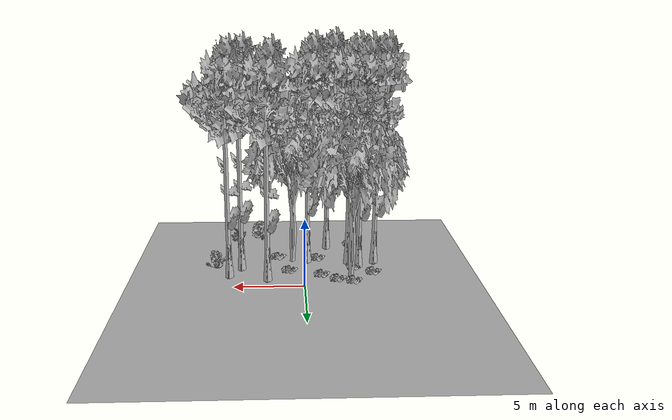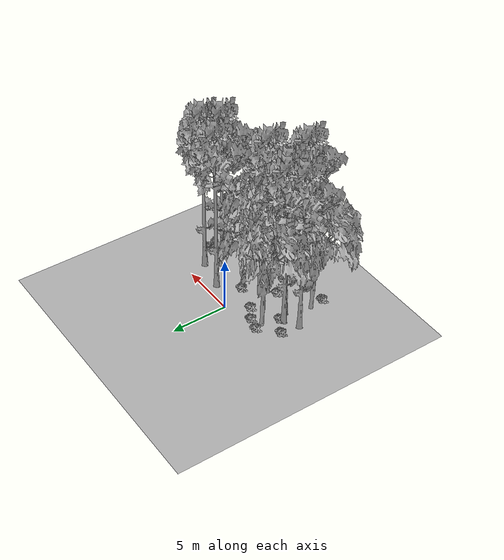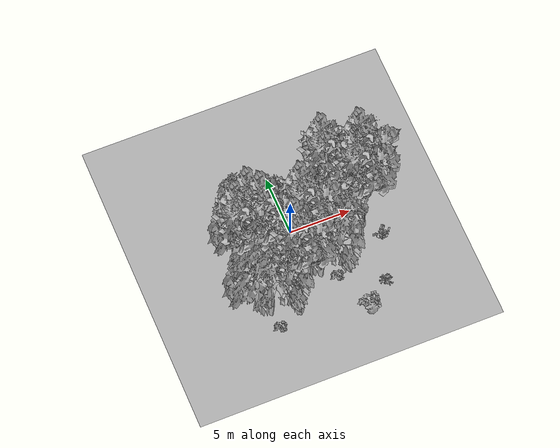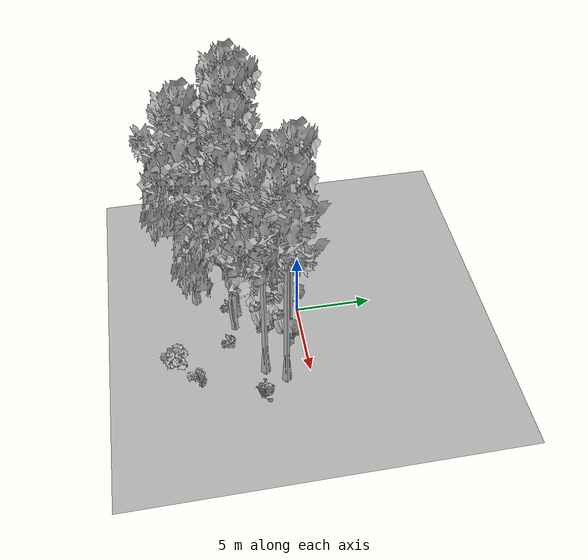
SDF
<sdf version="1.7">
 <world name="default">
  <model name="ground_plane">
   <static>1</static>
   <link name="link">
    <collision name="collision">
     <pose>-50 0 0 0 -0 0</pose>
     <geometry><plane><normal>0 0 1</normal><size>80 80</size></plane></geometry>
     <surface><contact><ode><min_depth>0.01</min_depth><max_vel>0</max_vel></ode></contact></surface>
    </collision>
    <visual name="grass">
     <cast_shadows>0</cast_shadows>
     <geometry>
      <mesh>
       <scale>0.46714285714285714 0.46714285714285714 0.1</scale>
       <uri>file://grass_plane/meshes/grass_plane.dae</uri>
      </mesh>
     </geometry>
    </visual>
   </link>
  </model>
  <model name="Tree 153">
   <static>1</static>
   <pose>0.7243563705566203 -4.327899389601306 0 1.57079 -0 0</pose>
   <link name="link">
    <collision name="collision">
     <geometry><mesh><scale>3.5 5 3.5</scale><uri>model://tree_2/meshes/tree_2.obj</uri></mesh></geometry>
    </collision>
    <visual name="visual">
     <geometry><mesh><scale>3.5 5 3.5</scale><uri>model://tree_2/meshes/tree_2.obj</uri></mesh></geometry>
    </visual>
   </link>
  </model>
  <model name="Tree 161">
   <static>1</static>
   <pose>-3.3308471588006228 -3.6734033693006154 0 1.57079 -0 0</pose>
   <link name="link">
    <collision name="collision">
     <geometry><mesh><scale>3.5 5 3.5</scale><uri>model://tree_9/meshes/tree_9.obj</uri></mesh></geometry>
    </collision>
    <visual name="visual">
     <geometry><mesh><scale>3.5 5 3.5</scale><uri>model://tree_9/meshes/tree_9.obj</uri></mesh></geometry>
    </visual>
   </link>
  </model>
  <model name="Tree 207">
   <static>1</static>
   <pose>-0.29854280141545786 -4.045062471416628 0 1.57079 -0 0</pose>
   <link name="link">
    <collision name="collision">
     <geometry><mesh><scale>3.5 5 3.5</scale><uri>model://tree_9/meshes/tree_9.obj</uri></mesh></geometry>
    </collision>
    <visual name="visual">
     <geometry><mesh><scale>3.5 5 3.5</scale><uri>model://tree_9/meshes/tree_9.obj</uri></mesh></geometry>
    </visual>
   </link>
  </model>
  <model name="Tree 213">
   <static>1</static>
   <pose>-5.317752921686832 -3.706784072918758 0 1.57079 -0 0</pose>
   <link name="link">
    <collision name="collision">
     <geometry><mesh><scale>3.5 5 3.5</scale><uri>model://tree_9/meshes/tree_9.obj</uri></mesh></geometry>
    </collision>
    <visual name="visual">
     <geometry><mesh><scale>3.5 5 3.5</scale><uri>model://tree_9/meshes/tree_9.obj</uri></mesh></geometry>
    </visual>
   </link>
  </model>
  <model name="Tree 257">
   <static>1</static>
   <pose>-3.4717127244187154 -1.3495793152864337 0 1.57079 -0 0</pose>
   <link name="link">
    <collision name="collision">
     <geometry><mesh><scale>3.5 5 3.5</scale><uri>model://tree_2/meshes/tree_2.obj</uri></mesh></geometry>
    </collision>
    <visual name="visual">
     <geometry><mesh><scale>3.5 5 3.5</scale><uri>model://tree_2/meshes/tree_2.obj</uri></mesh></geometry>
    </visual>
   </link>
  </model>
  <model name="Tree 293">
   <static>1</static>
   <pose>4.601462037285174 -2.814940014197248 0 1.57079 -0 0</pose>
   <link name="link">
    <collision name="collision">
     <geometry><mesh><scale>3.5 5 3.5</scale><uri>model://tree_9/meshes/tree_9.obj</uri></mesh></geometry>
    </collision>
    <visual name="visual">
     <geometry><mesh><scale>3.5 5 3.5</scale><uri>model://tree_9/meshes/tree_9.obj</uri></mesh></geometry>
    </visual>
   </link>
  </model>
  <model name="Tree 308">
   <static>1</static>
   <pose>-4.097489089154287 -5.914025226072894 0 1.57079 -0 0</pose>
   <link name="link">
    <collision name="collision">
     <geometry><mesh><scale>3.5 5 3.5</scale><uri>model://tree_2/meshes/tree_2.obj</uri></mesh></geometry>
    </collision>
    <visual name="visual">
     <geometry><mesh><scale>3.5 5 3.5</scale><uri>model://tree_2/meshes/tree_2.obj</uri></mesh></geometry>
    </visual>
   </link>
  </model>
  <model name="Tree 530">
   <static>1</static>
   <pose>5.422806515596996 -1.5967427232936728 0 1.57079 -0 0</pose>
   <link name="link">
    <collision name="collision">
     <geometry><mesh><scale>3.5 5 3.5</scale><uri>model://tree_9/meshes/tree_9.obj</uri></mesh></geometry>
    </collision>
    <visual name="visual">
     <geometry><mesh><scale>3.5 5 3.5</scale><uri>model://tree_9/meshes/tree_9.obj</uri></mesh></geometry>
    </visual>
   </link>
  </model>
  <model name="Tree 547">
   <static>1</static>
   <pose>2.6381015986633614 -0.938161236946641 0 1.57079 -0 0</pose>
   <link name="link">
    <collision name="collision">
     <geometry><mesh><scale>3.5 5 3.5</scale><uri>model://tree_9/meshes/tree_9.obj</uri></mesh></geometry>
    </collision>
    <visual name="visual">
     <geometry><mesh><scale>3.5 5 3.5</scale><uri>model://tree_9/meshes/tree_9.obj</uri></mesh></geometry>
    </visual>
   </link>
  </model>
  <model name="Tree 564">
   <static>1</static>
   <pose>-4.0950977575731855 -3.009428209185259 0 1.57079 -0 0</pose>
   <link name="link">
    <collision name="collision">
     <geometry><mesh><scale>3.5 5 3.5</scale><uri>model://tree_9/meshes/tree_9.obj</uri></mesh></geometry>
    </collision>
    <visual name="visual">
     <geometry><mesh><scale>3.5 5 3.5</scale><uri>model://tree_9/meshes/tree_9.obj</uri></mesh></geometry>
    </visual>
   </link>
  </model>
  <model name="Tree 573">
   <static>1</static>
   <pose>-1.8987265886763538 -6.616069482296226 0 1.57079 -0 0</pose>
   <link name="link">
    <collision name="collision">
     <geometry><mesh><scale>3.5 5 3.5</scale><uri>model://tree_9/meshes/tree_9.obj</uri></mesh></geometry>
    </collision>
    <visual name="visual">
     <geometry><mesh><scale>3.5 5 3.5</scale><uri>model://tree_9/meshes/tree_9.obj</uri></mesh></geometry>
    </visual>
   </link>
  </model>
  <model name="Bush 91">
   <static>1</static>
   <pose>6.479736933026793 -3.1681792640773665 0 1.57079 -0 0</pose>
   <link name="link">
    <collision name="collision">
     <geometry><mesh><scale>2 2 2</scale><uri>model://bush_4/meshes/bush_4.obj</uri></mesh></geometry>
     <surface><contact><collide_without_contact>false</collide_without_contact></contact></surface>
    </collision>
    <visual name="visual">
     <geometry><mesh><scale>2 2 2</scale><uri>model://bush_4/meshes/bush_4.obj</uri></mesh></geometry>
    </visual>
   </link>
  </model>
  <model name="Bush 290">
   <static>1</static>
   <pose>-2.377671889477881 -0.9883462794362714 0 1.57079 -0 0</pose>
   <link name="link">
    <collision name="collision">
     <geometry><mesh><scale>2 2 2</scale><uri>model://bush_2/meshes/bush_2.obj</uri></mesh></geometry>
     <surface><contact><collide_without_contact>false</collide_without_contact></contact></surface>
    </collision>
    <visual name="visual">
     <geometry><mesh><scale>2 2 2</scale><uri>model://bush_2/meshes/bush_2.obj</uri></mesh></geometry>
    </visual>
   </link>
  </model>
  <model name="Bush 327">
   <static>1</static>
   <pose>-3.803602787693592 -7.252829244851398 0 1.57079 -0 0</pose>
   <link name="link">
    <collision name="collision">
     <geometry><mesh><scale>2 2 2</scale><uri>model://bush_2/meshes/bush_2.obj</uri></mesh></geometry>
     <surface><contact><collide_without_contact>false</collide_without_contact></contact></surface>
    </collision>
    <visual name="visual">
     <geometry><mesh><scale>2 2 2</scale><uri>model://bush_2/meshes/bush_2.obj</uri></mesh></geometry>
    </visual>
   </link>
  </model>
  <model name="Bush 394">
   <static>1</static>
   <pose>1.1040472057815691 -2.4811483000868435 0 1.57079 -0 0</pose>
   <link name="link">
    <collision name="collision">
     <geometry><mesh><scale>2 2 2</scale><uri>model://bush_2/meshes/bush_2.obj</uri></mesh></geometry>
     <surface><contact><collide_without_contact>false</collide_without_contact></contact></surface>
    </collision>
    <visual name="visual">
     <geometry><mesh><scale>2 2 2</scale><uri>model://bush_2/meshes/bush_2.obj</uri></mesh></geometry>
    </visual>
   </link>
  </model>
  <model name="Bush 422">
   <static>1</static>
   <pose>3.2474034083118255 -8.49075638169338 0 1.57079 -0 0</pose>
   <link name="link">
    <collision name="collision">
     <geometry><mesh><scale>2 2 2</scale><uri>model://bush_1/meshes/bush_1.obj</uri></mesh></geometry>
     <surface><contact><collide_without_contact>false</collide_without_contact></contact></surface>
    </collision>
    <visual name="visual">
     <geometry><mesh><scale>2 2 2</scale><uri>model://bush_1/meshes/bush_1.obj</uri></mesh></geometry>
    </visual>
   </link>
  </model>
  <model name="Bush 429">
   <static>1</static>
   <pose>5.134653854395964 -6.921364342320942 0 1.57079 -0 0</pose>
   <link name="link">
    <collision name="collision">
     <geometry><mesh><scale>2 2 2</scale><uri>model://bush_5/meshes/bush_5.obj</uri></mesh></geometry>
     <surface><contact><collide_without_contact>false</collide_without_contact></contact></surface>
    </collision>
    <visual name="visual">
     <geometry><mesh><scale>2 2 2</scale><uri>model://bush_5/meshes/bush_5.obj</uri></mesh></geometry>
    </visual>
   </link>
  </model>
  <model name="Bush 442">
   <static>1</static>
   <pose>-5.07415305237857 -2.0809715621749376 0 1.57079 -0 0</pose>
   <link name="link">
    <collision name="collision">
     <geometry><mesh><scale>2 2 2</scale><uri>model://bush_2/meshes/bush_2.obj</uri></mesh></geometry>
     <surface><contact><collide_without_contact>false</collide_without_contact></contact></surface>
    </collision>
    <visual name="visual">
     <geometry><mesh><scale>2 2 2</scale><uri>model://bush_2/meshes/bush_2.obj</uri></mesh></geometry>
    </visual>
   </link>
  </model>
  <model name="Bush 456">
   <static>1</static>
   <pose>1.9482502569868174 -4.87533884439209 0 1.57079 -0 0</pose>
   <link name="link">
    <collision name="collision">
     <geometry><mesh><scale>2 2 2</scale><uri>model://bush_2/meshes/bush_2.obj</uri></mesh></geometry>
     <surface><contact><collide_without_contact>false</collide_without_contact></contact></surface>
    </collision>
    <visual name="visual">
     <geometry><mesh><scale>2 2 2</scale><uri>model://bush_2/meshes/bush_2.obj</uri></mesh></geometry>
    </visual>
   </link>
  </model>
  <model name="Bush 480">
   <static>1</static>
   <pose>-3.51157176303618 -0.6635279190127719 0 1.57079 -0 0</pose>
   <link name="link">
    <collision name="collision">
     <geometry><mesh><scale>2 2 2</scale><uri>model://bush_2/meshes/bush_2.obj</uri></mesh></geometry>
     <surface><contact><collide_without_contact>false</collide_without_contact></contact></surface>
    </collision>
    <visual name="visual">
     <geometry><mesh><scale>2 2 2</scale><uri>model://bush_2/meshes/bush_2.obj</uri></mesh></geometry>
    </visual>
   </link>
  </model>
  <model name="Bush 551">
   <static>1</static>
   <pose>-3.74717173875964 -2.9315059208669325 0 1.57079 -0 0</pose>
   <link name="link">
    <collision name="collision">
     <geometry><mesh><scale>2 2 2</scale><uri>model://bush_2/meshes/bush_2.obj</uri></mesh></geometry>
     <surface><contact><collide_without_contact>false</collide_without_contact></contact></surface>
    </collision>
    <visual name="visual">
     <geometry><mesh><scale>2 2 2</scale><uri>model://bush_2/meshes/bush_2.obj</uri></mesh></geometry>
    </visual>
   </link>
  </model>
  <model name="Bush 556">
   <static>1</static>
   <pose>-1.2568695038917 -1.7474013261324117 0 1.57079 -0 0</pose>
   <link name="link">
    <collision name="collision">
     <geometry><mesh><scale>2 2 2</scale><uri>model://bush_2/meshes/bush_2.obj</uri></mesh></geometry>
     <surface><contact><collide_without_contact>false</collide_without_contact></contact></surface>
    </collision>
    <visual name="visual">
     <geometry><mesh><scale>2 2 2</scale><uri>model://bush_2/meshes/bush_2.obj</uri></mesh></geometry>
    </visual>
   </link>
  </model>
  <model name="Bush 634">
   <static>1</static>
   <pose>-1.045449205325788 -4.599335889770799 0 1.57079 -0 0</pose>
   <link name="link">
    <collision name="collision">
     <geometry><mesh><scale>2 2 2</scale><uri>model://bush_2/meshes/bush_2.obj</uri></mesh></geometry>
     <surface><contact><collide_without_contact>false</collide_without_contact></contact></surface>
    </collision>
    <visual name="visual">
     <geometry><mesh><scale>2 2 2</scale><uri>model://bush_2/meshes/bush_2.obj</uri></mesh></geometry>
    </visual>
   </link>
  </model>
 </world>
</sdf>
